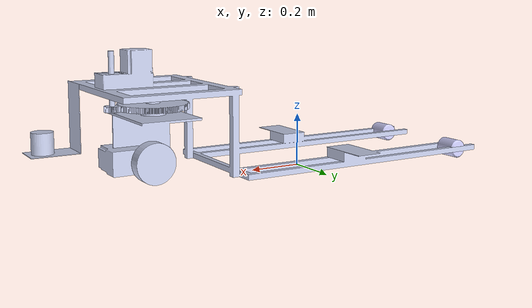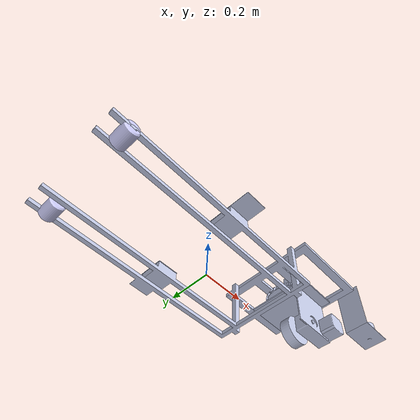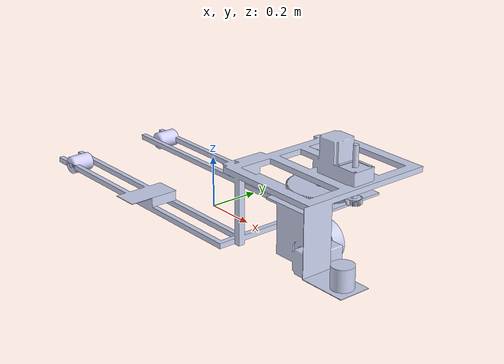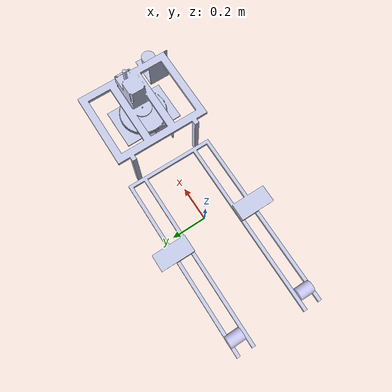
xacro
<?xml version="1.0" encoding="utf-8"?>
<robot
  name="gearfork_bot">
  <link
    name="base_footprint">
    <inertial>
      <origin
        xyz="-1.66533453693773E-16 -1.11022302462516E-16 0.0150000000000097"
        rpy="0 0 0" />
      <mass
        value="9.42477796076939E-05" />
      <inertia
        ixx="7.09214541547898E-09"
        ixy="1.07638717384255E-56"
        ixz="-2.73196242009685E-42"
        iyy="7.09214541547898E-09"
        iyz="2.54645439948029E-23"
        izz="4.71238898038469E-11" />
    </inertial>
    <visual>
      <origin
        xyz="0 0 0"
        rpy="0 0 0" />
      <geometry>
        <mesh
          filename="package://uv_bot_description/gearfork_bot/meshes/base_footprint.STL" />
      </geometry>
      <material
        name="">
        <color
          rgba="0.792156862745098 0.819607843137255 0.933333333333333 1" />
      </material>
    </visual>
    <collision>
      <origin
        xyz="0 0 0"
        rpy="0 0 0" />
      <geometry>
        <mesh
          filename="package://uv_bot_description/gearfork_bot/meshes/base_footprint.STL" />
      </geometry>
    </collision>
  </link>
  <link
    name="base_link">
    <inertial>
      <origin
        xyz="0.332083153374593 -0.00331447649651206 0.192922352383313"
        rpy="0 0 0" />
      <mass
        value="6.82953904074599" />
      <inertia
        ixx="0.240406964793965"
        ixy="0.012996572440763"
        ixz="-0.196549425056795"
        iyy="0.857443539684563"
        iyz="-0.000466640574438609"
        izz="0.919203079251692" />
    </inertial>
    <visual>
      <origin
        xyz="0 0 0"
        rpy="0 0 0" />
      <geometry>
        <mesh
          filename="package://uv_bot_description/gearfork_bot/meshes/base_link.STL" />
      </geometry>
      <material
        name="">
        <color
          rgba="0.792156862745098 0.819607843137255 0.933333333333333 1" />
      </material>
    </visual>
    <collision>
      <origin
        xyz="0 0 0"
        rpy="0 0 0" />
      <geometry>
        <mesh
          filename="package://uv_bot_description/gearfork_bot/meshes/base_link.STL" />
      </geometry>
    </collision>
  </link>
  <joint
    name="base_joint"
    type="fixed">
    <origin
      xyz="0 0 0.035"
      rpy="0 0 0" />
    <parent
      link="base_footprint" />
    <child
      link="base_link" />
    <axis
      xyz="0 0 0" />
  </joint>
  <link
    name="motor_link">
    <inertial>
      <origin
        xyz="0.0305449765313153 -0.0516187176938839 -0.152664460739497"
        rpy="0 0 0" />
      <mass
        value="3.62949819437905" />
      <inertia
        ixx="0.020873193105549"
        ixy="0.00122762908427952"
        ixz="8.16486496202453E-06"
        iyy="0.0180104324187444"
        iyz="-0.00335879654898832"
        izz="0.0249870479241688" />
    </inertial>
    <visual>
      <origin
        xyz="0 0 0"
        rpy="0 0 0" />
      <geometry>
        <mesh
          filename="package://uv_bot_description/gearfork_bot/meshes/motor_link.STL" />
      </geometry>
      <material
        name="">
        <color
          rgba="0.792156862745098 0.819607843137255 0.933333333333333 1" />
      </material>
    </visual>
    <collision>
      <origin
        xyz="0 0 0"
        rpy="0 0 0" />
      <geometry>
        <mesh
          filename="package://uv_bot_description/gearfork_bot/meshes/motor_link.STL" />
      </geometry>
    </collision>
  </link>
  <joint
    name="motor_joint"
    type="continuous">
    <origin
      xyz="0.6 0 0.287"
      rpy="0 0 0" />
    <parent
      link="base_link" />
    <child
      link="motor_link" />
    <axis
      xyz="0 0 1" />
  </joint>
  <link
    name="wheel_link">
    <inertial>
      <origin
        xyz="0.00017196626651117 -0.0274503580225008 2.22044604925031E-16"
        rpy="0 0 0" />
      <mass
        value="0.919701249338412" />
      <inertia
        ixx="0.00158997015044299"
        ixy="-5.62418653778609E-06"
        ixz="-6.63957229367091E-20"
        iyy="0.00248770363165098"
        iyz="1.16271390580822E-19"
        izz="0.00158993491700959" />
    </inertial>
    <visual>
      <origin
        xyz="0 0 0"
        rpy="0 0 0" />
      <geometry>
        <mesh
          filename="package://uv_bot_description/gearfork_bot/meshes/wheel_link.STL" />
      </geometry>
      <material
        name="">
        <color
          rgba="0.792156862745098 0.819607843137255 0.933333333333333 1" />
      </material>
    </visual>
    <collision>
      <origin
        xyz="0 0 0"
        rpy="0 0 0" />
      <geometry>
        <mesh
          filename="package://uv_bot_description/gearfork_bot/meshes/wheel_link.STL" />
      </geometry>
    </collision>
  </link>
  <joint
    name="wheel_joint"
    type="continuous">
    <origin
      xyz="0.004014 0.033026 -0.247"
      rpy="0 0 0" />
    <parent
      link="motor_link" />
    <child
      link="wheel_link" />
    <axis
      xyz="0.0062645 -0.99998 0" />
  </joint>
  <link
    name="steering_link">
    <inertial>
      <origin
        xyz="2.22044604925031E-16 1.11022302462516E-16 0.0708534190503747"
        rpy="0 0 0" />
      <mass
        value="0.100938321168348" />
      <inertia
        ixx="0.000449053155189826"
        ixy="-1.89271586316295E-20"
        ixz="6.21936423063308E-20"
        iyy="0.000449053155189826"
        iyz="-1.60007749740726E-19"
        izz="1.73496012240567E-05" />
    </inertial>
    <visual>
      <origin
        xyz="0 0 0"
        rpy="0 0 0" />
      <geometry>
        <mesh
          filename="package://uv_bot_description/gearfork_bot/meshes/steering_link.STL" />
      </geometry>
      <material
        name="">
        <color
          rgba="0.792156862745098 0.819607843137255 0.933333333333333 1" />
      </material>
    </visual>
    <collision>
      <origin
        xyz="0 0 0"
        rpy="0 0 0" />
      <geometry>
        <mesh
          filename="package://uv_bot_description/gearfork_bot/meshes/steering_link.STL" />
      </geometry>
    </collision>
  </link>
  <joint
    name="steering_joint"
    type="continuous">
    <origin
      xyz="0.74937 0 0.232"
      rpy="0 0 0" />
    <parent
      link="base_link" />
    <child
      link="steering_link" />
    <axis
      xyz="0 0 1" />
  </joint>
  <link
    name="laser_link">
    <inertial>
      <origin
        xyz="4.44089209850063E-16 0 -0.0395000000000001"
        rpy="0 0 0" />
      <mass
        value="0.39709731141375" />
      <inertia
        ixx="0.000365362617943268"
        ixy="4.15988159834906E-51"
        ixz="-1.21245706409418E-36"
        iyy="0.000365362617943268"
        iyz="6.46109837352292E-20"
        izz="0.000317677849131001" />
    </inertial>
    <visual>
      <origin
        xyz="0 0 0"
        rpy="0 0 0" />
      <geometry>
        <mesh
          filename="package://uv_bot_description/gearfork_bot/meshes/laser_link.STL" />
      </geometry>
      <material
        name="">
        <color
          rgba="0.792156862745098 0.819607843137255 0.933333333333333 1" />
      </material>
    </visual>
    <collision>
      <origin
        xyz="0 0 0"
        rpy="0 0 0" />
      <geometry>
        <mesh
          filename="package://uv_bot_description/gearfork_bot/meshes/laser_link.STL" />
      </geometry>
    </collision>
  </link>
  <joint
    name="laser_joint"
    type="fixed">
    <origin
      xyz="0.93 -0.22 0.146"
      rpy="0 0 0" />
    <parent
      link="base_link" />
    <child
      link="laser_link" />
    <axis
      xyz="0 0 1" />
  </joint>
  <link
    name="lroller_link">
    <inertial>
      <origin
        xyz="0 0.0450000000000002 0"
        rpy="0 0 0" />
      <mass
        value="0.312850268419984" />
      <inertia
        ixx="0.000307324665091248"
        ixy="8.7847735409044E-20"
        ixz="-2.35739885551304E-20"
        iyy="0.000204892709371718"
        iyz="2.69663364159728E-19"
        izz="0.000307324665091248" />
    </inertial>
    <visual>
      <origin
        xyz="0 0 0"
        rpy="0 0 0" />
      <geometry>
        <mesh
          filename="package://uv_bot_description/gearfork_bot/meshes/lroller_link.STL" />
      </geometry>
      <material
        name="">
        <color
          rgba="0.823529411764706 0.823529411764706 1 1" />
      </material>
    </visual>
    <collision>
      <origin
        xyz="0 0 0"
        rpy="0 0 0" />
      <geometry>
        <mesh
          filename="package://uv_bot_description/gearfork_bot/meshes/lroller_link.STL" />
      </geometry>
    </collision>
  </link>
  <joint
    name="lroller_joint"
    type="continuous">
    <origin
      xyz="-0.6 0.17 0.01"
      rpy="0 0 0" />
    <parent
      link="base_link" />
    <child
      link="lroller_link" />
    <axis
      xyz="0 1 0" />
    <dynamics
      friction="0.1" />
  </joint>
  <link
    name="rroller_link">
    <inertial>
      <origin
        xyz="1.66533453693773E-16 -0.0449999999999999 2.22044604925031E-16"
        rpy="0 0 0" />
      <mass
        value="0.312850268419983" />
      <inertia
        ixx="0.000307324665091247"
        ixy="3.35271630897544E-19"
        ixz="-8.68653616963297E-21"
        iyy="0.000204892709371718"
        iyz="4.43633506124443E-20"
        izz="0.000307324665091247" />
    </inertial>
    <visual>
      <origin
        xyz="0 0 0"
        rpy="0 0 0" />
      <geometry>
        <mesh
          filename="package://uv_bot_description/gearfork_bot/meshes/rroller_link.STL" />
      </geometry>
      <material
        name="">
        <color
          rgba="0.823529411764706 0.823529411764706 1 1" />
      </material>
    </visual>
    <collision>
      <origin
        xyz="0 0 0"
        rpy="0 0 0" />
      <geometry>
        <mesh
          filename="package://uv_bot_description/gearfork_bot/meshes/rroller_link.STL" />
      </geometry>
    </collision>
  </link>
  <joint
    name="rroller_joint"
    type="continuous">
    <origin
      xyz="-0.6 -0.17 0.01"
      rpy="0 0 0" />
    <parent
      link="base_link" />
    <child
      link="rroller_link" />
    <axis
      xyz="0 1 0" />
    <dynamics
      friction="0.1" />
  </joint>
</robot>
